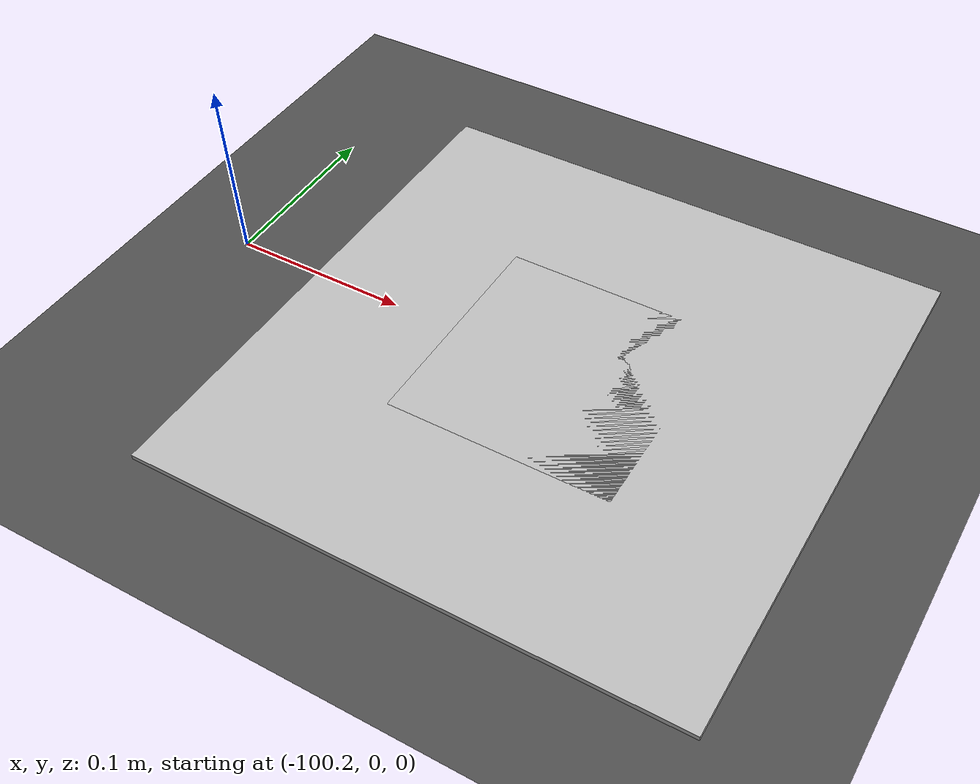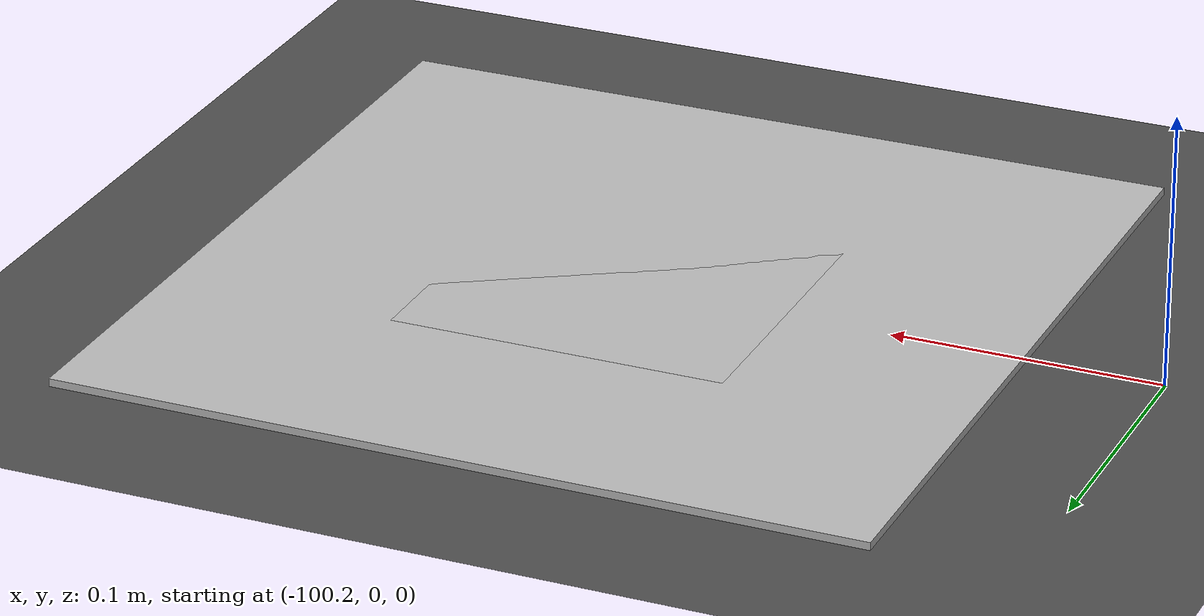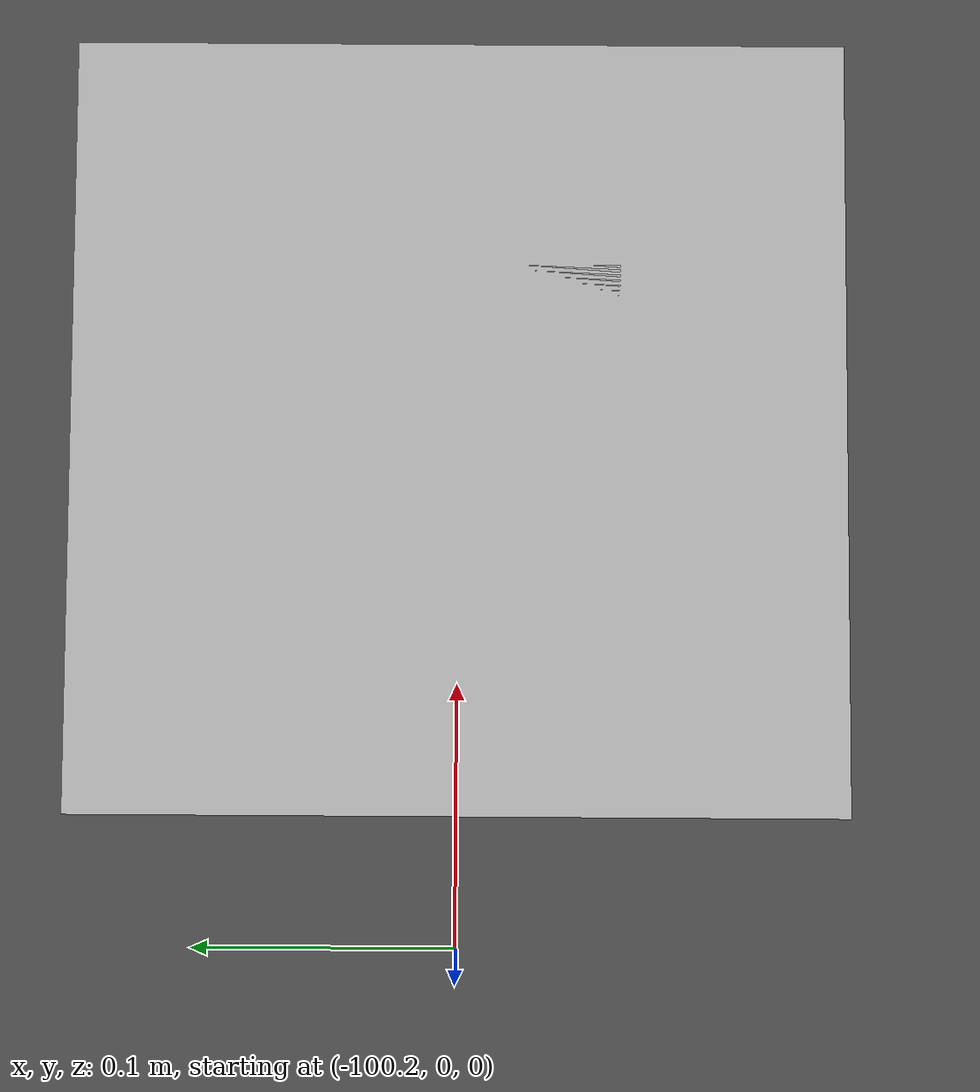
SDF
<?xml version="1.0" ?>
<sdf version="1.5">
  <world name="default">
    <!-- A global light source -->
    <include>
      <uri>model://sun</uri>
    </include>
    <!-- A ground plane -->

    <model name="asphalt_plane">
      <static>1</static>
      <link name='link'>
        <collision name='collision'>
          <geometry>
            <plane>
              <normal>0 0 1</normal>
              <size>400 20</size>
            </plane>
          </geometry>
          <surface>
            <contact>
              <collide_bitmask>65535</collide_bitmask>
              <ode/>
            </contact>
            <friction>
              <ode>
                <mu>100</mu>
                <mu2>50</mu2>
              </ode>
              <torsional>
                <ode/>
              </torsional>
            </friction>
            <bounce/>
          </surface>
          <max_contacts>10</max_contacts>
        </collision>
        <visual name='visual'>
          <cast_shadows>0</cast_shadows>
          <geometry>
            <plane>
              <normal>0 0 1</normal>
              <size>500 20</size>
            </plane>
          </geometry>
          <material>
            <script>
              <uri>model://asphalt_plane/materials/scripts</uri>
              <uri>model://asphalt_plane/materials/textures</uri>
              <name>asphalt_plane</name>
            </script>
          </material>
        </visual>
        <self_collide>0</self_collide>
        <enable_wind>0</enable_wind>
        <kinematic>0</kinematic>
      </link>
    </model>

    <physics name='default_physics' default='0' type='ode'>
      <gravity>0 0 -9.8066</gravity>
      <ode>
        <solver>
          <type>quick</type>
          <iters>50</iters>
          <sor>1.0</sor>
          <use_dynamic_moi_rescaling>0</use_dynamic_moi_rescaling>
        </solver>
        <constraints>
          <cfm>0</cfm>
          <erp>0.2</erp>
          <contact_max_correcting_vel>100</contact_max_correcting_vel>
          <contact_surface_layer>0.001</contact_surface_layer>
        </constraints>
      </ode>
      <max_step_size>0.004</max_step_size>
      <real_time_factor>1</real_time_factor>
      <real_time_update_rate>250</real_time_update_rate>
      <gravity>0 0 -9.8066</gravity>
      <magnetic_field>6.0e-6 2.3e-5 -4.2e-5</magnetic_field>
      <atmosphere type='adiabatic'/>
    </physics>
    <spherical_coordinates>
      <surface_model>EARTH_WGS84</surface_model>
      <latitude_deg>0</latitude_deg>
      <longitude_deg>0</longitude_deg>
      <elevation>0</elevation>
      <heading_deg>0</heading_deg>
    </spherical_coordinates>

    <model name='Apriltag36_11_00002'>
      <link name='apriltag_link1'>
        <pose frame=''>-100 0 0 0 -0 0</pose>
        <visual name='aprilTag'>
          <geometry>
            <box>
              <size>0.30 0.30 0.005</size>
            </box>
          </geometry>
          <material>
            <script>
              <uri>model://Apriltag36_11_00002/materials/scripts</uri>
              <uri>model://Apriltag36_11_00002/materials/textures</uri>
              <name>Apriltag36_11_00002</name>
            </script>
          </material>
        </visual>
        <self_collide>0</self_collide>
        <enable_wind>0</enable_wind>
        <kinematic>0</kinematic>
      </link>
      <static>1</static>
    </model>
    <model name='Apriltag36_11_00004'>
      <link name='apriltag_link2'>
        <pose frame=''>-100 0 0 0 -0 0</pose>
        <visual name='aprilTag'>
          <geometry>
            <box>
              <size>0.125 0.125 0.005</size>
            </box>
          </geometry>
          <material>
            <script>
              <uri>model://Apriltag36_11_00004/materials/scripts</uri>
              <uri>model://Apriltag36_11_00004/materials/textures</uri>
              <name>Apriltag36_11_00004</name>
            </script>
          </material>
        </visual>
        <self_collide>0</self_collide>
        <enable_wind>0</enable_wind>
        <kinematic>0</kinematic>
      </link>
      <static>1</static>
    </model>
    <plugin name='wind_plugin' filename='libgazebo_wind_plugin.so'>
      <frameId>world</frameId>
      <robotNamespace/>
      <windPubTopic>world_wind</windPubTopic>
    </plugin>
  </world>
</sdf>
